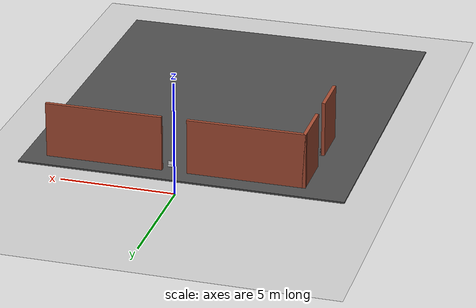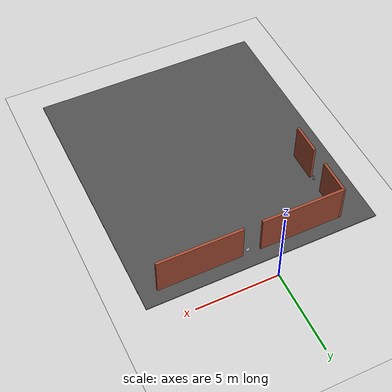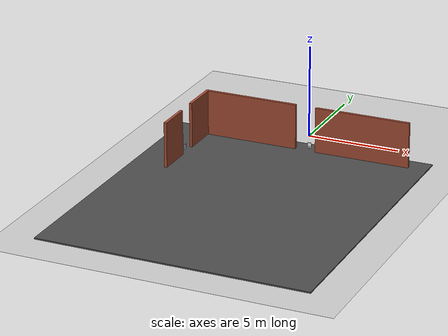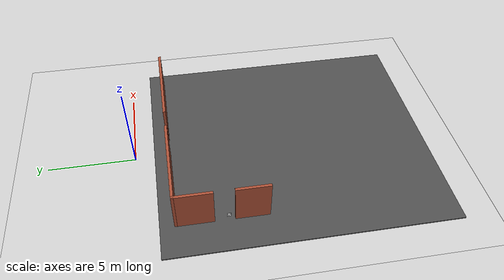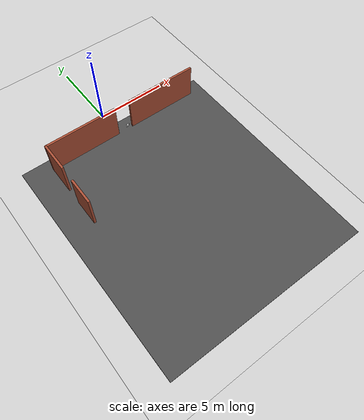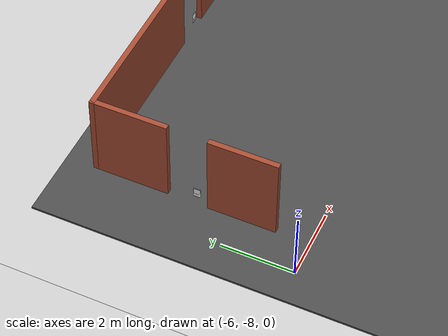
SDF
<sdf version="1.7">
 <world name="default">
  <light name="sun" type="directional">
   <pose>0 0 10 0 -0 0</pose>
   <diffuse>0.8 0.8 0.8 1</diffuse>
   <specular>0.2 0.2 0.2 1</specular>
   <attenuation>
    <range>1000</range>
    <constant>0.9</constant>
    <linear>0.01</linear>
    <quadratic>0.001</quadratic>
   </attenuation>
   <direction>-0.5 0.1 -0.9</direction>
   <spot><inner_angle>0</inner_angle><outer_angle>0</outer_angle><falloff>0</falloff></spot>
  </light>
  <model name="ground_plane">
   <static>1</static>
   <link name="link">
    <collision name="collision">
     <geometry><plane><normal>0 0 1</normal><size>100 100</size></plane></geometry>
     <surface>
      <contact><collide_bitmask>65535</collide_bitmask></contact>
      <friction><ode><mu>100</mu><mu2>50</mu2></ode></friction>
     </surface>
    </collision>
    <visual name="visual">
     <cast_shadows>0</cast_shadows>
     <geometry><plane><normal>0 0 1</normal><size>100 100</size></plane></geometry>
     <material>
      <script><uri>file://media/materials/scripts/gazebo.material</uri><name>Gazebo/Grey</name></script>
     </material>
    </visual>
   </link>
  </model>
  <gravity>0 0 -9.8</gravity>
  <magnetic_field>6e-06 2.3e-05 -4.2e-05</magnetic_field>
  <atmosphere type="adiabatic"/>
  <physics type="ode">
   <max_step_size>0.001</max_step_size>
   <real_time_factor>1</real_time_factor>
   <real_time_update_rate>1000</real_time_update_rate>
  </physics>
  <scene><ambient>0.4 0.4 0.4 1</ambient><background>0.7 0.7 0.7 1</background><shadows>1</shadows></scene>
  <spherical_coordinates>
   <surface_model>EARTH_WGS84</surface_model>
   <latitude_deg>0</latitude_deg>
   <longitude_deg>0</longitude_deg>
   <elevation>0</elevation>
   <heading_deg>0</heading_deg>
  </spherical_coordinates>
  <model name="asphalt_plane">
   <static>1</static>
   <link name="link">
    <collision name="collision"><geometry><box><size>14.2627 16.243 0.1</size></box></geometry></collision>
    <visual name="visual">
     <cast_shadows>0</cast_shadows>
     <geometry><box><size>14.2627 16.243 0.1</size></box></geometry>
     <material>
      <script>
       <uri>model://asphalt_plane/materials/scripts</uri>
       <uri>model://asphalt_plane/materials/textures</uri>
       <name>vrc/asphalt</name>
      </script>
     </material>
    </visual>
   </link>
   <pose>0.19709 -9.2488 0 0 -0 0</pose>
  </model>
  <model name="TestWall">
   <pose>0.625 -3.5375 0 0 -0 0</pose>
   <link name="Wall_10">
    <collision name="Wall_10_Collision">
     <geometry><box><size>2.15 0.15 2.5</size></box></geometry>
     <pose>0 0 1.25 0 -0 0</pose>
    </collision>
    <visual name="Wall_10_Visual">
     <pose>0 0 1.25 0 -0 0</pose>
     <geometry><box><size>2.15 0.15 2.5</size></box></geometry>
     <material>
      <script><uri>file://media/materials/scripts/gazebo.material</uri><name>Gazebo/Bricks</name></script>
      <ambient>1 1 1 1</ambient>
     </material>
     <meta><layer>0</layer></meta>
    </visual>
    <pose>-5.625 0.5375 0 0 -0 -1.5708</pose>
   </link>
   <link name="Wall_12">
    <collision name="Wall_12_Collision">
     <geometry><box><size>1.9 0.15 2.5</size></box></geometry>
     <pose>0 0 1.25 0 -0 0</pose>
    </collision>
    <visual name="Wall_12_Visual">
     <pose>0 0 1.25 0 -0 0</pose>
     <geometry><box><size>1.9 0.15 2.5</size></box></geometry>
     <material>
      <script><uri>file://media/materials/scripts/gazebo.material</uri><name>Gazebo/Bricks</name></script>
      <ambient>1 1 1 1</ambient>
     </material>
     <meta><layer>0</layer></meta>
    </visual>
    <pose>-5.625 -2.5875 0 0 -0 -1.5708</pose>
   </link>
   <link name="Wall_2">
    <collision name="Wall_2_Collision">
     <geometry><box><size>5.15 0.15 2.5</size></box></geometry>
     <pose>0 0 1.25 0 -0 0</pose>
    </collision>
    <visual name="Wall_2_Visual">
     <pose>0 0 1.25 0 -0 0</pose>
     <geometry><box><size>5.15 0.15 2.5</size></box></geometry>
     <material>
      <script><uri>file://media/materials/scripts/gazebo.material</uri><name>Gazebo/Bricks</name></script>
      <ambient>1 1 1 1</ambient>
     </material>
     <meta><layer>0</layer></meta>
    </visual>
    <pose>-3.125 1.5375 0 0 -0 0</pose>
   </link>
   <link name="Wall_4">
    <collision name="Wall_4_Collision">
     <geometry><box><size>5.15 0.15 2.5</size></box></geometry>
     <pose>0 0 1.25 0 -0 0</pose>
    </collision>
    <visual name="Wall_4_Visual">
     <pose>0 0 1.25 0 -0 0</pose>
     <geometry><box><size>5.15 0.15 2.5</size></box></geometry>
     <material>
      <script><uri>file://media/materials/scripts/gazebo.material</uri><name>Gazebo/Bricks</name></script>
      <ambient>1 1 1 1</ambient>
     </material>
     <meta><layer>0</layer></meta>
    </visual>
    <pose>3.125 1.5375 0 0 -0 0</pose>
   </link>
   <static>1</static>
  </model>
  <model name="aruco_visual_marker_7_pad">
   <frame name="aruco_visual_marker_7::__model__" attached_to="aruco_visual_marker_7::marker">
    <pose relative_to="__model__">0 0 0 0 -0 0</pose>
   </frame>
   <link name="aruco_visual_marker_7::marker">
    <pose relative_to="aruco_visual_marker_7::__model__">0 0 0 0 -0 0</pose>
    <visual name="visual">
     <geometry><box><size>0.1778 0.1778 1e-05</size></box></geometry>
     <material>
      <script>
       <uri>model://aruco_visual_marker_7/materials/scripts</uri>
       <uri>model://aruco_visual_marker_7/materials/textures</uri>
       <name>ArucoVisualMarker7/Marker</name>
      </script>
      <ambient>1 1 1 1</ambient>
      <diffuse>1 1 1 1</diffuse>
      <specular>0 0 0 1</specular>
      <emissive>1 1 1 0</emissive>
      <shader type="vertex"><normal_map>__default__</normal_map></shader>
     </material>
    </visual>
    <collision name="collision"><geometry><box><size>0.1778 0.1778 1e-05</size></box></geometry></collision>
   </link>
   <link name="aruco_visual_marker_7::marker_pad">
    <pose relative_to="aruco_visual_marker_7::marker">0 0 -0.001 0 -0 0</pose>
    <visual name="visual">
     <geometry><box><size>0.1778 0.1778 1e-05</size></box></geometry>
     <material>
      <lighting>1</lighting>
      <script><uri>file://media/materials/scripts/gazebo.material</uri><name>Gazebo/White</name></script>
      <ambient>0.3 0.3 0.3 1</ambient>
      <diffuse>0.7 0.7 0.7 1</diffuse>
      <specular>0.01 0.01 0.01 1</specular>
      <emissive>1 1 1 0</emissive>
      <shader type="vertex"><normal_map>__default__</normal_map></shader>
     </material>
    </visual>
    <collision name="collision"><geometry><box><size>0.1778 0.1778 1e-05</size></box></geometry></collision>
   </link>
   <joint name="aruco_visual_marker_7::marker_JOINT_marker_pad" type="revolute">
    <parent>aruco_visual_marker_7::marker</parent>
    <child>aruco_visual_marker_7::marker_pad</child>
    <axis>
     <xyz>0 0 1</xyz>
     <limit><upper>0</upper><lower>0</lower></limit>
     <dynamics><spring_reference>0</spring_reference><spring_stiffness>0</spring_stiffness></dynamics>
    </axis>
   </joint>
   <static>1</static>
   <link name="marker_pad_large">
    <pose relative_to="aruco_visual_marker_7::marker">-0.035 0 -0.001 0 -0 0</pose>
    <visual name="visual">
     <geometry><box><size>0.297 0.21 1e-05</size></box></geometry>
     <material>
      <lighting>1</lighting>
      <script><uri>file://media/materials/scripts/gazebo.material</uri><name>Gazebo/White</name></script>
      <ambient>0.3 0.3 0.3 1</ambient>
      <diffuse>0.7 0.7 0.7 1</diffuse>
      <specular>0.01 0.01 0.01 1</specular>
      <emissive>1 1 1 0</emissive>
      <shader type="vertex"><normal_map>__default__</normal_map></shader>
     </material>
    </visual>
    <collision name="collision">
     <geometry><box><size>0.297 0.21 1e-05</size></box></geometry>
     <surface>
      <friction>
       <ode><mu>1</mu><mu2>1</mu2><fdir1>0 0 0</fdir1><slip1>0</slip1><slip2>0</slip2></ode>
       <torsional>
        <coefficient>1</coefficient>
        <patch_radius>0</patch_radius>
        <surface_radius>0</surface_radius>
        <use_patch_radius>1</use_patch_radius>
        <ode><slip>0</slip></ode>
       </torsional>
      </friction>
      <bounce><restitution_coefficient>0</restitution_coefficient><threshold>1e+06</threshold></bounce>
      <contact>
       <collide_without_contact>0</collide_without_contact>
       <collide_without_contact_bitmask>1</collide_without_contact_bitmask>
       <collide_bitmask>1</collide_bitmask>
       <ode>
        <soft_cfm>0</soft_cfm>
        <soft_erp>0.2</soft_erp>
        <kp>1e+13</kp>
        <kd>1</kd>
        <max_vel>0.01</max_vel>
        <min_depth>0</min_depth>
       </ode>
       <bullet>
        <split_impulse>1</split_impulse>
        <split_impulse_penetration_threshold>-0.01</split_impulse_penetration_threshold>
        <soft_cfm>0</soft_cfm>
        <soft_erp>0.2</soft_erp>
        <kp>1e+13</kp>
        <kd>1</kd>
       </bullet>
      </contact>
     </surface>
    </collision>
   </link>
   <link name="marker_num">
    <pose relative_to="marker_pad_large">-0.14 0 1e-05 0 -0 0</pose>
    <visual name="visual">
     <geometry><box><size>0.05 0.05 1e-05</size></box></geometry>
     <material>
      <script>
       <uri>model://aruco_visual_marker_7_pad/materials/scripts</uri>
       <uri>model://aruco_visual_marker_7_pad/materials/textures</uri>
       <name>ArucoVisualMarker7/Num</name>
      </script>
      <ambient>1 1 1 1</ambient>
      <diffuse>1 1 1 1</diffuse>
      <specular>0 0 0 1</specular>
      <emissive>1 1 1 0</emissive>
      <shader type="vertex"><normal_map>__default__</normal_map></shader>
     </material>
    </visual>
    <collision name="collision">
     <geometry><box><size>0.05 0.05 1e-05</size></box></geometry>
     <surface>
      <friction>
       <ode><mu>1</mu><mu2>1</mu2><fdir1>0 0 0</fdir1><slip1>0</slip1><slip2>0</slip2></ode>
       <torsional>
        <coefficient>1</coefficient>
        <patch_radius>0</patch_radius>
        <surface_radius>0</surface_radius>
        <use_patch_radius>1</use_patch_radius>
        <ode><slip>0</slip></ode>
       </torsional>
      </friction>
      <bounce><restitution_coefficient>0</restitution_coefficient><threshold>1e+06</threshold></bounce>
      <contact>
       <collide_without_contact>0</collide_without_contact>
       <collide_without_contact_bitmask>1</collide_without_contact_bitmask>
       <collide_bitmask>1</collide_bitmask>
       <ode>
        <soft_cfm>0</soft_cfm>
        <soft_erp>0.2</soft_erp>
        <kp>1e+13</kp>
        <kd>1</kd>
        <max_vel>0.01</max_vel>
        <min_depth>0</min_depth>
       </ode>
       <bullet>
        <split_impulse>1</split_impulse>
        <split_impulse_penetration_threshold>-0.01</split_impulse_penetration_threshold>
        <soft_cfm>0</soft_cfm>
        <soft_erp>0.2</soft_erp>
        <kp>1e+13</kp>
        <kd>1</kd>
       </bullet>
      </contact>
     </surface>
    </collision>
   </link>
   <joint name="marker_JOINT_marker_pad_large" type="revolute">
    <parent>aruco_visual_marker_7::marker</parent>
    <child>marker_pad_large</child>
    <axis>
     <xyz>0 0 1</xyz>
     <limit><upper>0</upper><lower>0</lower></limit>
     <dynamics><spring_reference>0</spring_reference><spring_stiffness>0</spring_stiffness></dynamics>
    </axis>
   </joint>
   <joint name="pad_large_JOINT_marker_num" type="revolute">
    <parent>marker_pad_large</parent>
    <child>marker_num</child>
    <axis>
     <xyz>0 0 1</xyz>
     <limit><upper>0</upper><lower>0</lower></limit>
     <dynamics><spring_reference>0</spring_reference><spring_stiffness>0</spring_stiffness></dynamics>
    </axis>
   </joint>
   <static>1</static>
   <pose>-4.96727 -4.84155 0.396302 -0.000399 -1.57 3.14119</pose>
  </model>
  <model name="aruco_visual_marker_6_pad">
   <frame name="aruco_visual_marker_6::__model__" attached_to="aruco_visual_marker_6::marker">
    <pose relative_to="__model__">0 0 0 0 -0 0</pose>
   </frame>
   <link name="aruco_visual_marker_6::marker">
    <pose relative_to="aruco_visual_marker_6::__model__">0 0 0 0 -0 0</pose>
    <visual name="visual">
     <geometry><box><size>0.1778 0.1778 1e-05</size></box></geometry>
     <material>
      <script>
       <uri>model://aruco_visual_marker_6/materials/scripts</uri>
       <uri>model://aruco_visual_marker_6/materials/textures</uri>
       <name>ArucoVisualMarker6/Marker</name>
      </script>
      <ambient>1 1 1 1</ambient>
      <diffuse>1 1 1 1</diffuse>
      <specular>0 0 0 1</specular>
      <emissive>1 1 1 0</emissive>
      <shader type="vertex"><normal_map>__default__</normal_map></shader>
     </material>
    </visual>
    <collision name="collision"><geometry><box><size>0.1778 0.1778 1e-05</size></box></geometry></collision>
   </link>
   <link name="aruco_visual_marker_6::marker_pad">
    <pose relative_to="aruco_visual_marker_6::marker">0 0 -0.001 0 -0 0</pose>
    <visual name="visual">
     <geometry><box><size>0.1778 0.1778 1e-05</size></box></geometry>
     <material>
      <lighting>1</lighting>
      <script><uri>file://media/materials/scripts/gazebo.material</uri><name>Gazebo/White</name></script>
      <ambient>0.3 0.3 0.3 1</ambient>
      <diffuse>0.7 0.7 0.7 1</diffuse>
      <specular>0.01 0.01 0.01 1</specular>
      <emissive>1 1 1 0</emissive>
      <shader type="vertex"><normal_map>__default__</normal_map></shader>
     </material>
    </visual>
    <collision name="collision"><geometry><box><size>0.1778 0.1778 1e-05</size></box></geometry></collision>
   </link>
   <joint name="aruco_visual_marker_6::marker_JOINT_marker_pad" type="revolute">
    <parent>aruco_visual_marker_6::marker</parent>
    <child>aruco_visual_marker_6::marker_pad</child>
    <axis>
     <xyz>0 0 1</xyz>
     <limit><upper>0</upper><lower>0</lower></limit>
     <dynamics><spring_reference>0</spring_reference><spring_stiffness>0</spring_stiffness></dynamics>
    </axis>
   </joint>
   <static>1</static>
   <link name="marker_pad_large">
    <pose relative_to="aruco_visual_marker_6::marker">-0.035 0 -0.001 0 -0 0</pose>
    <visual name="visual">
     <geometry><box><size>0.297 0.21 1e-05</size></box></geometry>
     <material>
      <lighting>1</lighting>
      <script><uri>file://media/materials/scripts/gazebo.material</uri><name>Gazebo/White</name></script>
      <ambient>0.3 0.3 0.3 1</ambient>
      <diffuse>0.7 0.7 0.7 1</diffuse>
      <specular>0.01 0.01 0.01 1</specular>
      <emissive>1 1 1 0</emissive>
      <shader type="vertex"><normal_map>__default__</normal_map></shader>
     </material>
    </visual>
    <collision name="collision">
     <geometry><box><size>0.297 0.21 1e-05</size></box></geometry>
     <surface>
      <friction>
       <ode><mu>1</mu><mu2>1</mu2><fdir1>0 0 0</fdir1><slip1>0</slip1><slip2>0</slip2></ode>
       <torsional>
        <coefficient>1</coefficient>
        <patch_radius>0</patch_radius>
        <surface_radius>0</surface_radius>
        <use_patch_radius>1</use_patch_radius>
        <ode><slip>0</slip></ode>
       </torsional>
      </friction>
      <bounce><restitution_coefficient>0</restitution_coefficient><threshold>1e+06</threshold></bounce>
      <contact>
       <collide_without_contact>0</collide_without_contact>
       <collide_without_contact_bitmask>1</collide_without_contact_bitmask>
       <collide_bitmask>1</collide_bitmask>
       <ode>
        <soft_cfm>0</soft_cfm>
        <soft_erp>0.2</soft_erp>
        <kp>1e+13</kp>
        <kd>1</kd>
        <max_vel>0.01</max_vel>
        <min_depth>0</min_depth>
       </ode>
       <bullet>
        <split_impulse>1</split_impulse>
        <split_impulse_penetration_threshold>-0.01</split_impulse_penetration_threshold>
        <soft_cfm>0</soft_cfm>
        <soft_erp>0.2</soft_erp>
        <kp>1e+13</kp>
        <kd>1</kd>
       </bullet>
      </contact>
     </surface>
    </collision>
   </link>
   <link name="marker_num">
    <pose relative_to="marker_pad_large">-0.14 0 1e-05 0 -0 0</pose>
    <visual name="visual">
     <geometry><box><size>0.05 0.05 1e-05</size></box></geometry>
     <material>
      <script>
       <uri>model://aruco_visual_marker_6_pad/materials/scripts</uri>
       <uri>model://aruco_visual_marker_6_pad/materials/textures</uri>
       <name>ArucoVisualMarker6/Num</name>
      </script>
      <ambient>1 1 1 1</ambient>
      <diffuse>1 1 1 1</diffuse>
      <specular>0 0 0 1</specular>
      <emissive>1 1 1 0</emissive>
      <shader type="vertex"><normal_map>__default__</normal_map></shader>
     </material>
    </visual>
    <collision name="collision">
     <geometry><box><size>0.05 0.05 1e-05</size></box></geometry>
     <surface>
      <friction>
       <ode><mu>1</mu><mu2>1</mu2><fdir1>0 0 0</fdir1><slip1>0</slip1><slip2>0</slip2></ode>
       <torsional>
        <coefficient>1</coefficient>
        <patch_radius>0</patch_radius>
        <surface_radius>0</surface_radius>
        <use_patch_radius>1</use_patch_radius>
        <ode><slip>0</slip></ode>
       </torsional>
      </friction>
      <bounce><restitution_coefficient>0</restitution_coefficient><threshold>1e+06</threshold></bounce>
      <contact>
       <collide_without_contact>0</collide_without_contact>
       <collide_without_contact_bitmask>1</collide_without_contact_bitmask>
       <collide_bitmask>1</collide_bitmask>
       <ode>
        <soft_cfm>0</soft_cfm>
        <soft_erp>0.2</soft_erp>
        <kp>1e+13</kp>
        <kd>1</kd>
        <max_vel>0.01</max_vel>
        <min_depth>0</min_depth>
       </ode>
       <bullet>
        <split_impulse>1</split_impulse>
        <split_impulse_penetration_threshold>-0.01</split_impulse_penetration_threshold>
        <soft_cfm>0</soft_cfm>
        <soft_erp>0.2</soft_erp>
        <kp>1e+13</kp>
        <kd>1</kd>
       </bullet>
      </contact>
     </surface>
    </collision>
   </link>
   <joint name="marker_JOINT_marker_pad_large" type="revolute">
    <parent>aruco_visual_marker_6::marker</parent>
    <child>marker_pad_large</child>
    <axis>
     <xyz>0 0 1</xyz>
     <limit><upper>0</upper><lower>0</lower></limit>
     <dynamics><spring_reference>0</spring_reference><spring_stiffness>0</spring_stiffness></dynamics>
    </axis>
   </joint>
   <joint name="pad_large_JOINT_marker_num" type="revolute">
    <parent>marker_pad_large</parent>
    <child>marker_num</child>
    <axis>
     <xyz>0 0 1</xyz>
     <limit><upper>0</upper><lower>0</lower></limit>
     <dynamics><spring_reference>0</spring_reference><spring_stiffness>0</spring_stiffness></dynamics>
    </axis>
   </joint>
   <static>1</static>
   <pose>0.842649 -2.01022 0.399646 -0.000361 -1.57 1.57036</pose>
  </model>
 </world>
</sdf>
